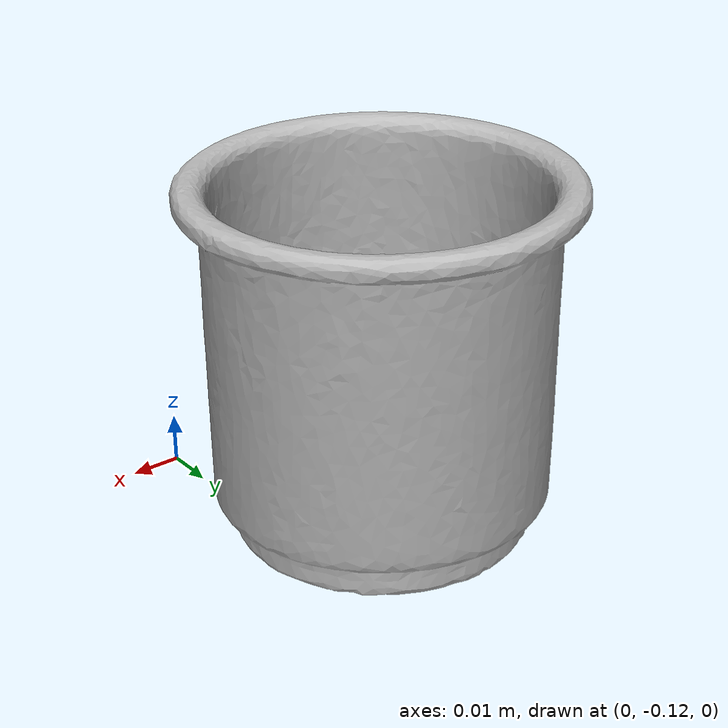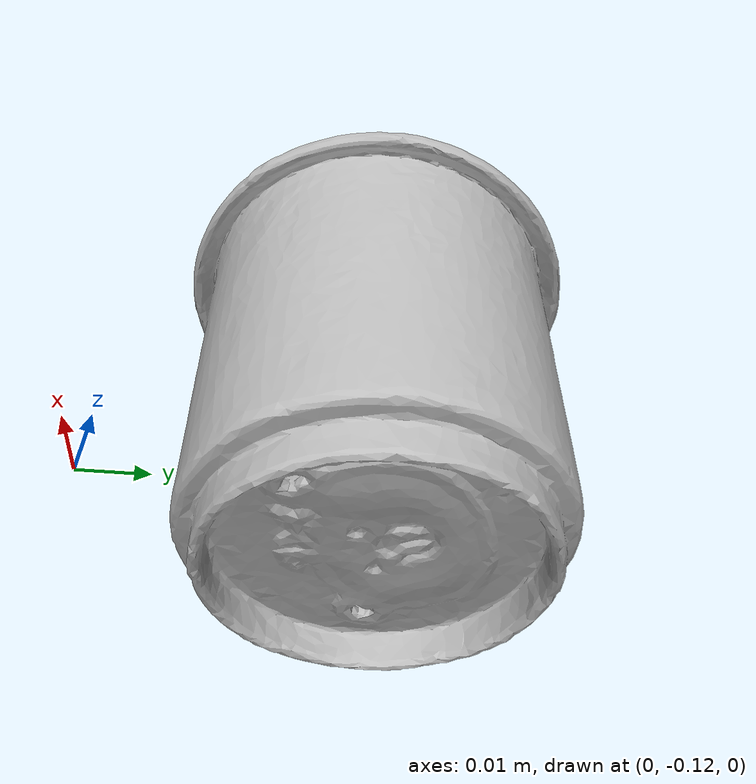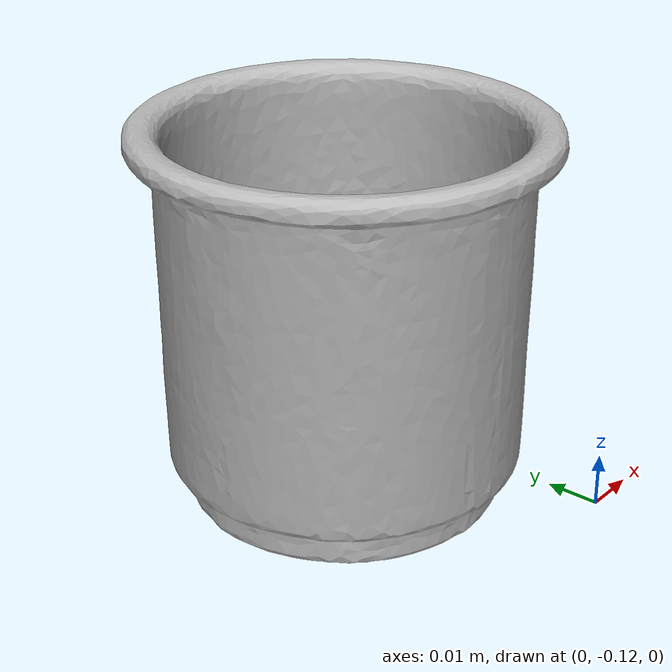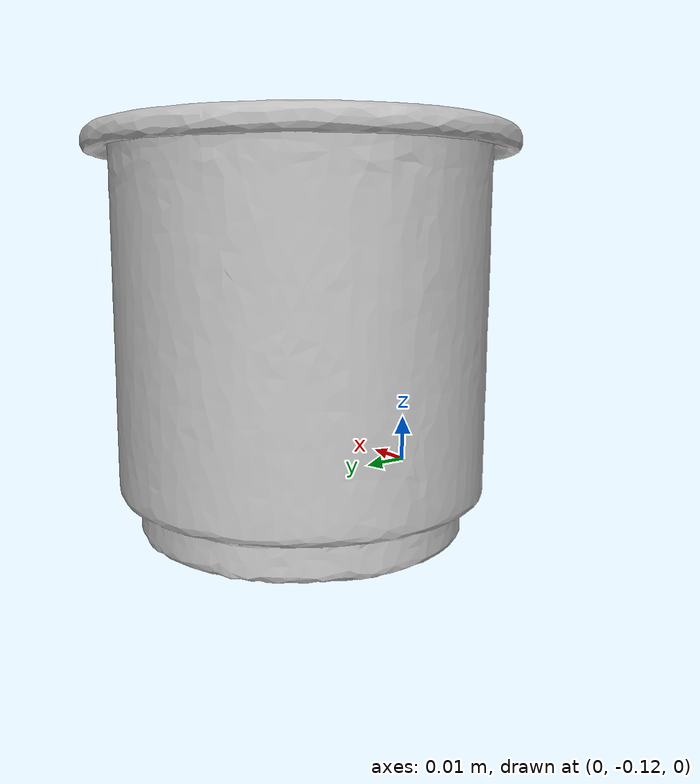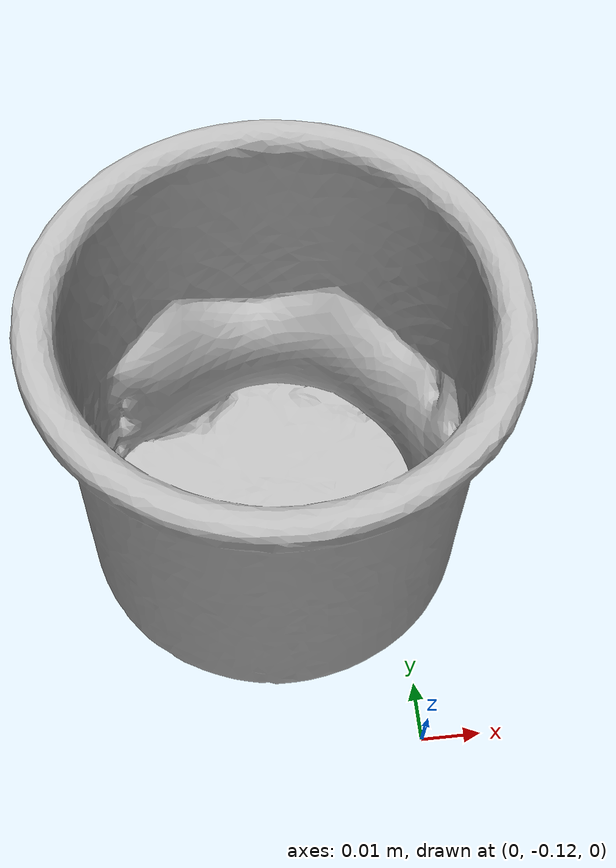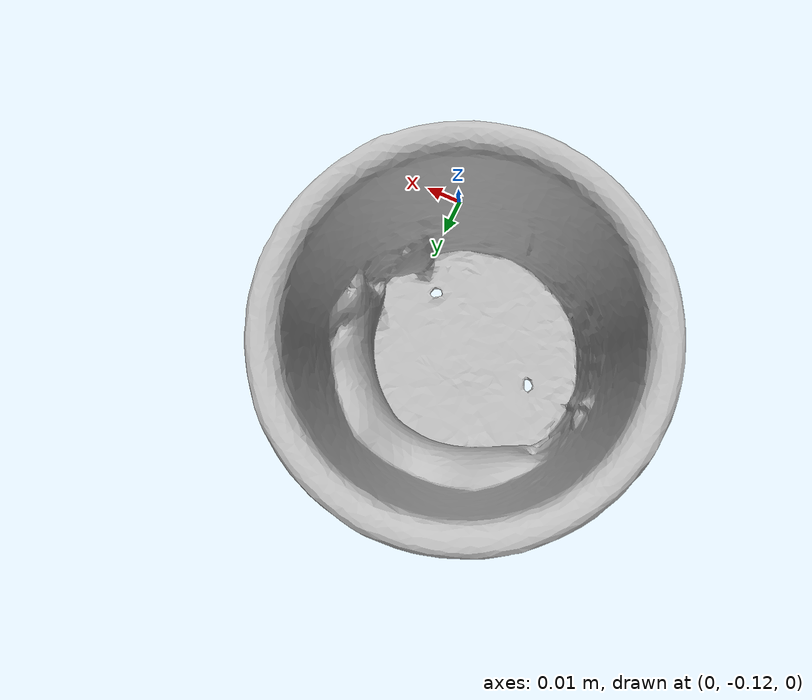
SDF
<?xml version='1.0'?>
<sdf version="1.4">
  <model name="e_cups">
    <static>false</static>
    <link name="link">
      <inertial>
        <pose>-0.019152019112154205 -0.07367966947628143 0.030395630482407465 2.8893243950395533 0.8389994336872556 -2.073327084841483</pose>
        <mass>4.532431815174534e-05</mass>
        <inertia>
          <ixx>4.159937216714846e-08</ixx>
          <ixy>-1.2517404085888897e-24</ixy>
          <ixz>-8.628487475792777e-25</ixz>
          <iyy>3.839650113690094e-08</iyy>
          <iyz>-2.6388400551253314e-25</iyz>
          <izz>3.7199922953454634e-08</izz>
        </inertia>
      </inertial>
      <collision name="collision">
        <geometry>
          <mesh>
            <!-- Use a downsampled mesh for collisions -->
            <uri>model://065-e_cups/google_16k/065-e_cups.obj</uri>
            </mesh>
        </geometry>
        <surface>
          <friction>
            <ode>
              <mu>0.9</mu>
              <mu2>0.9</mu2>
            </ode>
          </friction>
          <contact>
            <ode>
              <kp>1000000000000.0</kp>
              <kd>1</kd>
              <min_depth>0.0001</min_depth>
              <max_vel>0.01</max_vel>
            </ode>
          </contact>
          <bounce>
            <restitution_coefficient>0.1</restitution_coefficient>
            <threshold>1000.0</threshold>
          </bounce>
        </surface>
      </collision>
      <visual name="visual">
        <geometry>
          <mesh>
            <uri>model://065-e_cups/google_16k/065-e_cups.dae</uri>
            </mesh>
        </geometry>
      </visual>
    </link>
  </model>
</sdf>
